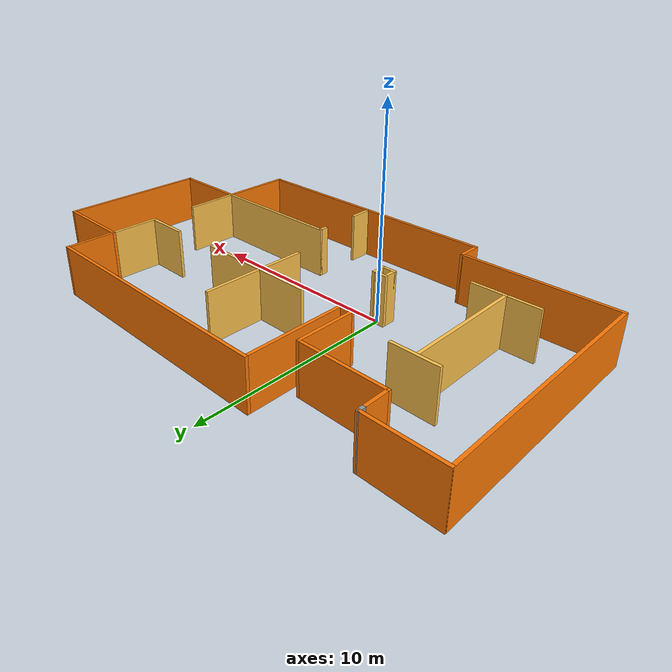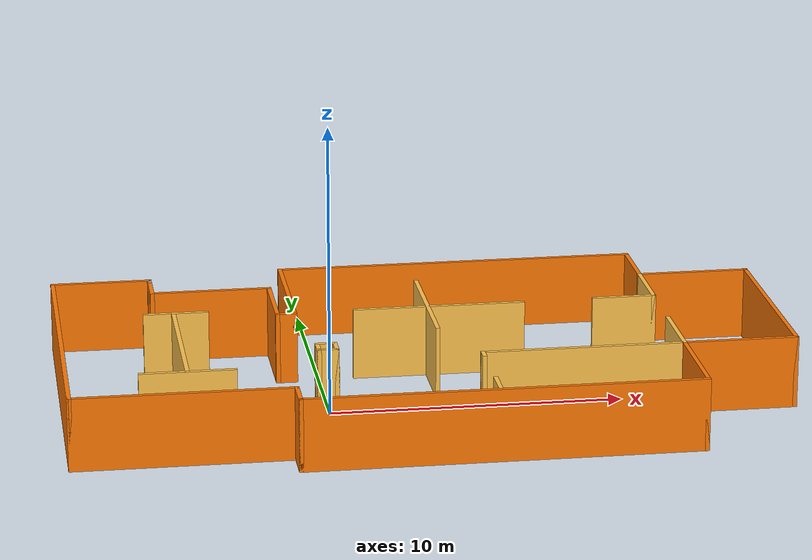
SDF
<?xml version='1.0'?>
<sdf version='1.7'>
  <model name='arm_house'>
    <pose>3.38484 1.53478 0 0 -0 0</pose>
    <link name='Wall_101'>
      <collision name='Wall_101_Collision'>
        <geometry>
          <box>
            <size>2.75 0.15 2.5</size>
          </box>
        </geometry>
        <pose>0 0 1.25 0 -0 0</pose>
      </collision>
      <visual name='Wall_101_Visual'>
        <pose>0 0 1.25 0 -0 0</pose>
        <geometry>
          <box>
            <size>2.75 0.15 2.5</size>
          </box>
        </geometry>
        <material>
          <script>
            <uri>file://media/materials/scripts/gazebo.material</uri>
            <name>Gazebo/Grey</name>
          </script>
          <ambient>1 0.764706 0.305882 1</ambient>
        </material>
        <meta>
          <layer>0</layer>
        </meta>
      </visual>
      <pose>8.425 -1.75 0 0 -0 1.5708</pose>
    </link>
    <link name='Wall_103'>
      <collision name='Wall_103_Collision'>
        <geometry>
          <box>
            <size>7 0.15 2.5</size>
          </box>
        </geometry>
        <pose>0 0 1.25 0 -0 0</pose>
      </collision>
      <visual name='Wall_103_Visual'>
        <pose>0 0 1.25 0 -0 0</pose>
        <geometry>
          <box>
            <size>7 0.15 2.5</size>
          </box>
        </geometry>
        <material>
          <script>
            <uri>file://media/materials/scripts/gazebo.material</uri>
            <name>Gazebo/Grey</name>
          </script>
          <ambient>1 0.764706 0.305882 1</ambient>
        </material>
        <meta>
          <layer>0</layer>
        </meta>
      </visual>
      <pose>5 -3.05 0 0 -0 3.14159</pose>
    </link>
    <link name='Wall_104'>
      <collision name='Wall_104_Collision'>
        <geometry>
          <box>
            <size>0.5 0.15 2.5</size>
          </box>
        </geometry>
        <pose>0 0 1.25 0 -0 0</pose>
      </collision>
      <visual name='Wall_104_Visual'>
        <pose>0 0 1.25 0 -0 0</pose>
        <geometry>
          <box>
            <size>0.5 0.15 2.5</size>
          </box>
        </geometry>
        <material>
          <script>
            <uri>file://media/materials/scripts/gazebo.material</uri>
            <name>Gazebo/Grey</name>
          </script>
          <ambient>1 0.764706 0.305882 1</ambient>
        </material>
        <meta>
          <layer>0</layer>
        </meta>
      </visual>
      <pose>1.575 -3.225 0 0 -0 -1.5708</pose>
    </link>
    <link name='Wall_106'>
      <collision name='Wall_106_Collision'>
        <geometry>
          <box>
            <size>1.25 0.15 2.5</size>
          </box>
        </geometry>
        <pose>0 0 1.25 0 -0 0</pose>
      </collision>
      <visual name='Wall_106_Visual'>
        <pose>0 0 1.25 0 -0 0</pose>
        <geometry>
          <box>
            <size>1.25 0.15 2.5</size>
          </box>
        </geometry>
        <material>
          <script>
            <uri>file://media/materials/scripts/gazebo.material</uri>
            <name>Gazebo/Grey</name>
          </script>
          <ambient>1 0.764706 0.305882 1</ambient>
        </material>
        <meta>
          <layer>0</layer>
        </meta>
      </visual>
      <pose>1.58669 -6.09197 0 0 -0 1.5708</pose>
    </link>
    <link name='Wall_108'>
      <collision name='Wall_108_Collision'>
        <geometry>
          <box>
            <size>0.75 0.15 2.5</size>
          </box>
        </geometry>
        <pose>0 0 1.25 0 -0 0</pose>
      </collision>
      <visual name='Wall_108_Visual'>
        <pose>0 0 1.25 0 -0 0</pose>
        <geometry>
          <box>
            <size>0.75 0.15 2.5</size>
          </box>
        </geometry>
        <material>
          <script>
            <uri>file://media/materials/scripts/gazebo.material</uri>
            <name>Gazebo/Grey</name>
          </script>
          <ambient>1 0.764706 0.305882 1</ambient>
        </material>
        <meta>
          <layer>0</layer>
        </meta>
      </visual>
      <pose>-3.79225 -1.74467 0 0 -0 -1.5708</pose>
    </link>
    <link name='Wall_109'>
      <collision name='Wall_109_Collision'>
        <geometry>
          <box>
            <size>0.75 0.15 2.5</size>
          </box>
        </geometry>
        <pose>0 0 1.25 0 -0 0</pose>
      </collision>
      <visual name='Wall_109_Visual'>
        <pose>0 0 1.25 0 -0 0</pose>
        <geometry>
          <box>
            <size>0.75 0.15 2.5</size>
          </box>
        </geometry>
        <material>
          <script>
            <uri>file://media/materials/scripts/gazebo.material</uri>
            <name>Gazebo/Grey</name>
          </script>
          <ambient>1 0.764706 0.305882 1</ambient>
        </material>
        <meta>
          <layer>0</layer>
        </meta>
      </visual>
      <pose>-3.49225 -2.04467 0 0 -0 0</pose>
    </link>
    <link name='Wall_110'>
      <collision name='Wall_110_Collision'>
        <geometry>
          <box>
            <size>0.75 0.15 2.5</size>
          </box>
        </geometry>
        <pose>0 0 1.25 0 -0 0</pose>
      </collision>
      <visual name='Wall_110_Visual'>
        <pose>0 0 1.25 0 -0 0</pose>
        <geometry>
          <box>
            <size>0.75 0.15 2.5</size>
          </box>
        </geometry>
        <material>
          <script>
            <uri>file://media/materials/scripts/gazebo.material</uri>
            <name>Gazebo/Grey</name>
          </script>
          <ambient>1 0.764706 0.305882 1</ambient>
        </material>
        <meta>
          <layer>0</layer>
        </meta>
      </visual>
      <pose>-3.19225 -1.74467 0 0 -0 1.5708</pose>
    </link>
    <link name='Wall_111'>
      <collision name='Wall_111_Collision'>
        <geometry>
          <box>
            <size>0.75 0.15 2.5</size>
          </box>
        </geometry>
        <pose>0 0 1.25 0 -0 0</pose>
      </collision>
      <visual name='Wall_111_Visual'>
        <pose>0 0 1.25 0 -0 0</pose>
        <geometry>
          <box>
            <size>0.75 0.15 2.5</size>
          </box>
        </geometry>
        <material>
          <script>
            <uri>file://media/materials/scripts/gazebo.material</uri>
            <name>Gazebo/Grey</name>
          </script>
          <ambient>1 0.764706 0.305882 1</ambient>
        </material>
        <meta>
          <layer>0</layer>
        </meta>
      </visual>
      <pose>-3.49225 -1.44467 0 0 -0 3.14159</pose>
    </link>
    <link name='Wall_67'>
      <collision name='Wall_67_Collision'>
        <geometry>
          <box>
            <size>11.75 0.15 2.5</size>
          </box>
        </geometry>
        <pose>0 0 1.25 0 -0 0</pose>
      </collision>
      <visual name='Wall_67_Visual'>
        <pose>0 0 1.25 0 -0 0</pose>
        <geometry>
          <box>
            <size>11.75 0.15 2.5</size>
          </box>
        </geometry>
        <material>
          <script>
            <uri>file://media/materials/scripts/gazebo.material</uri>
            <name>Gazebo/Grey</name>
          </script>
          <ambient>0.996078 0.47451 0.0196078 1</ambient>
        </material>
        <meta>
          <layer>0</layer>
        </meta>
      </visual>
      <pose>-12.275 0.25 0 0 -0 -1.5708</pose>
    </link>
    <link name='Wall_68'>
      <collision name='Wall_68_Collision'>
        <geometry>
          <box>
            <size>7.5 0.15 2.5</size>
          </box>
        </geometry>
        <pose>0 0 1.25 0 -0 0</pose>
      </collision>
      <visual name='Wall_68_Visual'>
        <pose>0 0 1.25 0 -0 0</pose>
        <geometry>
          <box>
            <size>7.5 0.15 2.5</size>
          </box>
        </geometry>
        <material>
          <script>
            <uri>file://media/materials/scripts/gazebo.material</uri>
            <name>Gazebo/Grey</name>
          </script>
          <ambient>0.996078 0.47451 0.0196078 1</ambient>
        </material>
        <meta>
          <layer>0</layer>
        </meta>
      </visual>
      <pose>-8.6 -5.55 0 0 -0 0</pose>
    </link>
    <link name='Wall_69'>
      <collision name='Wall_69_Collision'>
        <geometry>
          <box>
            <size>1.25 0.15 2.5</size>
          </box>
        </geometry>
        <pose>0 0 1.25 0 -0 0</pose>
      </collision>
      <visual name='Wall_69_Visual'>
        <pose>0 0 1.25 0 -0 0</pose>
        <geometry>
          <box>
            <size>1.25 0.15 2.5</size>
          </box>
        </geometry>
        <material>
          <script>
            <uri>file://media/materials/scripts/gazebo.material</uri>
            <name>Gazebo/Grey</name>
          </script>
          <ambient>0.996078 0.47451 0.0196078 1</ambient>
        </material>
        <meta>
          <layer>0</layer>
        </meta>
      </visual>
      <pose>-4.925 -6.1 0 0 -0 -1.5708</pose>
    </link>
    <link name='Wall_70'>
      <collision name='Wall_70_Collision'>
        <geometry>
          <box>
            <size>13.5 0.15 2.5</size>
          </box>
        </geometry>
        <pose>0 0 1.25 0 -0 0</pose>
      </collision>
      <visual name='Wall_70_Visual'>
        <pose>0 0 1.25 0 -0 0</pose>
        <geometry>
          <box>
            <size>13.5 0.15 2.5</size>
          </box>
        </geometry>
        <material>
          <script>
            <uri>file://media/materials/scripts/gazebo.material</uri>
            <name>Gazebo/Grey</name>
          </script>
          <ambient>0.996078 0.47451 0.0196078 1</ambient>
        </material>
        <meta>
          <layer>0</layer>
        </meta>
      </visual>
      <pose>1.75 -6.65 0 0 -0 0</pose>
    </link>
    <link name='Wall_71'>
      <collision name='Wall_71_Collision'>
        <geometry>
          <box>
            <size>3.75 0.15 2.5</size>
          </box>
        </geometry>
        <pose>0 0 1.25 0 -0 0</pose>
      </collision>
      <visual name='Wall_71_Visual'>
        <pose>0 0 1.25 0 -0 0</pose>
        <geometry>
          <box>
            <size>3.75 0.15 2.5</size>
          </box>
        </geometry>
        <material>
          <script>
            <uri>file://media/materials/scripts/gazebo.material</uri>
            <name>Gazebo/Grey</name>
          </script>
          <ambient>0.996078 0.47451 0.0196078 1</ambient>
        </material>
        <meta>
          <layer>0</layer>
        </meta>
      </visual>
      <pose>8.425 -4.85 0 0 -0 1.5708</pose>
    </link>
    <link name='Wall_72'>
      <collision name='Wall_72_Collision'>
        <geometry>
          <box>
            <size>4 0.15 2.5</size>
          </box>
        </geometry>
        <pose>0 0 1.25 0 -0 0</pose>
      </collision>
      <visual name='Wall_72_Visual'>
        <pose>0 0 1.25 0 -0 0</pose>
        <geometry>
          <box>
            <size>4 0.15 2.5</size>
          </box>
        </geometry>
        <material>
          <script>
            <uri>file://media/materials/scripts/gazebo.material</uri>
            <name>Gazebo/Grey</name>
          </script>
          <ambient>0.996078 0.47451 0.0196078 1</ambient>
        </material>
        <meta>
          <layer>0</layer>
        </meta>
      </visual>
      <pose>10.35 -3.05 0 0 -0 0</pose>
    </link>
    <link name='Wall_73'>
      <collision name='Wall_73_Collision'>
        <geometry>
          <box>
            <size>7.5 0.15 2.5</size>
          </box>
        </geometry>
        <pose>0 0 1.25 0 -0 0</pose>
      </collision>
      <visual name='Wall_73_Visual'>
        <pose>0 0 1.25 0 -0 0</pose>
        <geometry>
          <box>
            <size>7.5 0.15 2.5</size>
          </box>
        </geometry>
        <material>
          <script>
            <uri>file://media/materials/scripts/gazebo.material</uri>
            <name>Gazebo/Grey</name>
          </script>
          <ambient>0.996078 0.47451 0.0196078 1</ambient>
        </material>
        <meta>
          <layer>0</layer>
        </meta>
      </visual>
      <pose>12.275 0.625 0 0 -0 1.5708</pose>
    </link>
    <link name='Wall_74'>
      <collision name='Wall_74_Collision'>
        <geometry>
          <box>
            <size>4 0.15 2.5</size>
          </box>
        </geometry>
        <pose>0 0 1.25 0 -0 0</pose>
      </collision>
      <visual name='Wall_74_Visual'>
        <pose>0 0 1.25 0 -0 0</pose>
        <geometry>
          <box>
            <size>4 0.15 2.5</size>
          </box>
        </geometry>
        <material>
          <script>
            <uri>file://media/materials/scripts/gazebo.material</uri>
            <name>Gazebo/Grey</name>
          </script>
          <ambient>0.996078 0.47451 0.0196078 1</ambient>
        </material>
        <meta>
          <layer>0</layer>
        </meta>
      </visual>
      <pose>10.35 4.3 0 0 -0 3.14159</pose>
    </link>
    <link name='Wall_75'>
      <collision name='Wall_75_Collision'>
        <geometry>
          <box>
            <size>2.5 0.15 2.5</size>
          </box>
        </geometry>
        <pose>0 0 1.25 0 -0 0</pose>
      </collision>
      <visual name='Wall_75_Visual'>
        <pose>0 0 1.25 0 -0 0</pose>
        <geometry>
          <box>
            <size>2.5 0.15 2.5</size>
          </box>
        </geometry>
        <material>
          <script>
            <uri>file://media/materials/scripts/gazebo.material</uri>
            <name>Gazebo/Grey</name>
          </script>
          <ambient>0.996078 0.47451 0.0196078 1</ambient>
        </material>
        <meta>
          <layer>0</layer>
        </meta>
      </visual>
      <pose>8.425 5.475 0 0 -0 1.5708</pose>
    </link>
    <link name='Wall_76'>
      <collision name='Wall_76_Collision'>
        <geometry>
          <box>
            <size>12.75 0.15 2.5</size>
          </box>
        </geometry>
        <pose>0 0 1.25 0 -0 0</pose>
      </collision>
      <visual name='Wall_76_Visual'>
        <pose>0 0 1.25 0 -0 0</pose>
        <geometry>
          <box>
            <size>12.75 0.15 2.5</size>
          </box>
        </geometry>
        <material>
          <script>
            <uri>file://media/materials/scripts/gazebo.material</uri>
            <name>Gazebo/Grey</name>
          </script>
          <ambient>0.996078 0.47451 0.0196078 1</ambient>
        </material>
        <meta>
          <layer>0</layer>
        </meta>
      </visual>
      <pose>2.125 6.65 0 0 -0 3.14159</pose>
    </link>
    <link name='Wall_77'>
      <collision name='Wall_77_Collision'>
        <geometry>
          <box>
            <size>5 0.15 2.5</size>
          </box>
        </geometry>
        <pose>0 0 1.25 0 -0 0</pose>
      </collision>
      <visual name='Wall_77_Visual'>
        <pose>0 0 1.25 0 -0 0</pose>
        <geometry>
          <box>
            <size>5 0.15 2.5</size>
          </box>
        </geometry>
        <material>
          <script>
            <uri>file://media/materials/scripts/gazebo.material</uri>
            <name>Gazebo/Grey</name>
          </script>
          <ambient>0.996078 0.47451 0.0196078 1</ambient>
        </material>
        <meta>
          <layer>0</layer>
        </meta>
      </visual>
      <pose>-4.175 4.225 0 0 -0 -1.5708</pose>
    </link>
    <link name='Wall_78'>
      <collision name='Wall_78_Collision'>
        <geometry>
          <box>
            <size>0.75 0.15 2.5</size>
          </box>
        </geometry>
        <pose>0 0 1.25 0 -0 0</pose>
      </collision>
      <visual name='Wall_78_Visual'>
        <pose>0 0 1.25 0 -0 0</pose>
        <geometry>
          <box>
            <size>0.75 0.15 2.5</size>
          </box>
        </geometry>
        <material>
          <script>
            <uri>file://media/materials/scripts/gazebo.material</uri>
            <name>Gazebo/Grey</name>
          </script>
          <ambient>0.996078 0.47451 0.0196078 1</ambient>
        </material>
        <meta>
          <layer>0</layer>
        </meta>
      </visual>
      <pose>-4.475 1.8 0 0 -0 3.14159</pose>
    </link>
    <link name='Wall_79'>
      <collision name='Wall_79_Collision'>
        <geometry>
          <box>
            <size>3 0.15 2.5</size>
          </box>
        </geometry>
        <pose>0 0 1.25 0 -0 0</pose>
      </collision>
      <visual name='Wall_79_Visual'>
        <pose>0 0 1.25 0 -0 0</pose>
        <geometry>
          <box>
            <size>3 0.15 2.5</size>
          </box>
        </geometry>
        <material>
          <script>
            <uri>file://media/materials/scripts/gazebo.material</uri>
            <name>Gazebo/Grey</name>
          </script>
          <ambient>0.996078 0.47451 0.0196078 1</ambient>
        </material>
        <meta>
          <layer>0</layer>
        </meta>
      </visual>
      <pose>-4.775 3.225 0 0 -0 1.5708</pose>
    </link>
    <link name='Wall_80'>
      <collision name='Wall_80_Collision'>
        <geometry>
          <box>
            <size>4.25 0.15 2.5</size>
          </box>
        </geometry>
        <pose>0 0 1.25 0 -0 0</pose>
      </collision>
      <visual name='Wall_80_Visual'>
        <pose>0 0 1.25 0 -0 0</pose>
        <geometry>
          <box>
            <size>4.25 0.15 2.5</size>
          </box>
        </geometry>
        <material>
          <script>
            <uri>file://media/materials/scripts/gazebo.material</uri>
            <name>Gazebo/Grey</name>
          </script>
          <ambient>0.996078 0.47451 0.0196078 1</ambient>
        </material>
        <meta>
          <layer>0</layer>
        </meta>
      </visual>
      <pose>-6.825 4.65 0 0 -0 3.14159</pose>
    </link>
    <link name='Wall_81'>
      <collision name='Wall_81_Collision'>
        <geometry>
          <box>
            <size>1.25 0.15 2.5</size>
          </box>
        </geometry>
        <pose>0 0 1.25 0 -0 0</pose>
      </collision>
      <visual name='Wall_81_Visual'>
        <pose>0 0 1.25 0 -0 0</pose>
        <geometry>
          <box>
            <size>1.25 0.15 2.5</size>
          </box>
        </geometry>
        <material>
          <script>
            <uri>file://media/materials/scripts/gazebo.material</uri>
            <name>Gazebo/Grey</name>
          </script>
          <ambient>0.996078 0.47451 0.0196078 1</ambient>
        </material>
        <meta>
          <layer>0</layer>
        </meta>
      </visual>
      <pose>-8.875 5.2 0 0 -0 1.5708</pose>
    </link>
    <link name='Wall_82'>
      <collision name='Wall_82_Collision'>
        <geometry>
          <box>
            <size>0.5 0.15 2.5</size>
          </box>
        </geometry>
        <pose>0 0 1.25 0 -0 0</pose>
      </collision>
      <visual name='Wall_82_Visual'>
        <pose>0 0 1.25 0 -0 0</pose>
        <geometry>
          <box>
            <size>0.5 0.15 2.5</size>
          </box>
        </geometry>
        <material>
          <script>
            <uri>file://media/materials/scripts/gazebo.material</uri>
            <name>Gazebo/Grey</name>
          </script>
          <ambient>1 1 1 1</ambient>
        </material>
        <meta>
          <layer>0</layer>
        </meta>
      </visual>
      <pose>-8.875 5.925 0 0 -0 1.5708</pose>
    </link>
    <link name='Wall_83'>
      <collision name='Wall_83_Collision'>
        <geometry>
          <box>
            <size>3.5422 0.15 2.5</size>
          </box>
        </geometry>
        <pose>0 0 1.25 0 -0 0</pose>
      </collision>
      <visual name='Wall_83_Visual'>
        <pose>0 0 1.25 0 -0 0</pose>
        <geometry>
          <box>
            <size>3.5422 0.15 2.5</size>
          </box>
        </geometry>
        <material>
          <script>
            <uri>file://media/materials/scripts/gazebo.material</uri>
            <name>Gazebo/Grey</name>
          </script>
          <ambient>0.996078 0.47451 0.0196078 1</ambient>
        </material>
        <meta>
          <layer>0</layer>
        </meta>
      </visual>
      <pose>-10.5711 6.09939 0 0 -0 -3.14123</pose>
    </link>
    <link name='Wall_85'>
      <collision name='Wall_85_Collision'>
        <geometry>
          <box>
            <size>2.25 0.15 2.5</size>
          </box>
        </geometry>
        <pose>0 0 1.25 0 -0 0</pose>
      </collision>
      <visual name='Wall_85_Visual'>
        <pose>0 0 1.25 0 -0 0</pose>
        <geometry>
          <box>
            <size>2.25 0.15 2.5</size>
          </box>
        </geometry>
        <material>
          <script>
            <uri>file://media/materials/scripts/gazebo.material</uri>
            <name>Gazebo/Grey</name>
          </script>
          <ambient>1 0.764706 0.305882 1</ambient>
        </material>
        <meta>
          <layer>0</layer>
        </meta>
      </visual>
      <pose>-8.22484 2.39665 0 0 -0 0</pose>
    </link>
    <link name='Wall_87'>
      <collision name='Wall_87_Collision'>
        <geometry>
          <box>
            <size>6 0.15 2.5</size>
          </box>
        </geometry>
        <pose>0 0 1.25 0 -0 0</pose>
      </collision>
      <visual name='Wall_87_Visual'>
        <pose>0 0 1.25 0 -0 0</pose>
        <geometry>
          <box>
            <size>6 0.15 2.5</size>
          </box>
        </geometry>
        <material>
          <script>
            <uri>file://media/materials/scripts/gazebo.material</uri>
            <name>Gazebo/Grey</name>
          </script>
          <ambient>1 0.764706 0.305882 1</ambient>
        </material>
        <meta>
          <layer>0</layer>
        </meta>
      </visual>
      <pose>-8.30484 -0.567336 0 0 -0 -1.5708</pose>
    </link>
    <link name='Wall_90'>
      <collision name='Wall_90_Collision'>
        <geometry>
          <box>
            <size>3.25 0.15 2.5</size>
          </box>
        </geometry>
        <pose>0 0 1.25 0 -0 0</pose>
      </collision>
      <visual name='Wall_90_Visual'>
        <pose>0 0 1.25 0 -0 0</pose>
        <geometry>
          <box>
            <size>3.25 0.15 2.5</size>
          </box>
        </geometry>
        <material>
          <script>
            <uri>file://media/materials/scripts/gazebo.material</uri>
            <name>Gazebo/Grey</name>
          </script>
          <ambient>1 0.764706 0.305882 1</ambient>
        </material>
        <meta>
          <layer>0</layer>
        </meta>
      </visual>
      <pose>-8.2937 -3.54127 0 0 -0 0</pose>
    </link>
    <link name='Wall_92'>
      <collision name='Wall_92_Collision'>
        <geometry>
          <box>
            <size>6 0.15 2.5</size>
          </box>
        </geometry>
        <pose>0 0 1.25 0 -0 0</pose>
      </collision>
      <visual name='Wall_92_Visual'>
        <pose>0 0 1.25 0 -0 0</pose>
        <geometry>
          <box>
            <size>6 0.15 2.5</size>
          </box>
        </geometry>
        <material>
          <script>
            <uri>file://media/materials/scripts/gazebo.material</uri>
            <name>Gazebo/Grey</name>
          </script>
          <ambient>1 0.764706 0.305882 1</ambient>
        </material>
        <meta>
          <layer>0</layer>
        </meta>
      </visual>
      <pose>0.843608 1.89041 0 0 -0 0</pose>
    </link>
    <link name='Wall_94'>
      <collision name='Wall_94_Collision'>
        <geometry>
          <box>
            <size>5.25 0.15 2.5</size>
          </box>
        </geometry>
        <pose>0 0 1.25 0 -0 0</pose>
      </collision>
      <visual name='Wall_94_Visual'>
        <pose>0 0 1.25 0 -0 0</pose>
        <geometry>
          <box>
            <size>5.25 0.15 2.5</size>
          </box>
        </geometry>
        <material>
          <script>
            <uri>file://media/materials/scripts/gazebo.material</uri>
            <name>Gazebo/Grey</name>
          </script>
          <ambient>1 0.764706 0.305882 1</ambient>
        </material>
        <meta>
          <layer>0</layer>
        </meta>
      </visual>
      <pose>0.454094 2.15132 0 0 -0 -1.5708</pose>
    </link>
    <link name='Wall_98'>
      <collision name='Wall_98_Collision'>
        <geometry>
          <box>
            <size>2.5 0.15 2.5</size>
          </box>
        </geometry>
        <pose>0 0 1.25 0 -0 0</pose>
      </collision>
      <visual name='Wall_98_Visual'>
        <pose>0 0 1.25 0 -0 0</pose>
        <geometry>
          <box>
            <size>2.5 0.15 2.5</size>
          </box>
        </geometry>
        <material>
          <script>
            <uri>file://media/materials/scripts/gazebo.material</uri>
            <name>Gazebo/Grey</name>
          </script>
          <ambient>1 0.764706 0.305882 1</ambient>
        </material>
        <meta>
          <layer>0</layer>
        </meta>
      </visual>
      <pose>8.425 3.125 0 0 -0 -1.5708</pose>
    </link>
    <link name='Wall_99'>
      <collision name='Wall_99_Collision'>
        <geometry>
          <box>
            <size>2.25 0.15 2.5</size>
          </box>
        </geometry>
        <pose>0 0 1.25 0 -0 0</pose>
      </collision>
      <visual name='Wall_99_Visual'>
        <pose>0 0 1.25 0 -0 0</pose>
        <geometry>
          <box>
            <size>2.25 0.15 2.5</size>
          </box>
        </geometry>
        <material>
          <script>
            <uri>file://media/materials/scripts/gazebo.material</uri>
            <name>Gazebo/Grey</name>
          </script>
          <ambient>1 0.764706 0.305882 1</ambient>
        </material>
        <meta>
          <layer>0</layer>
        </meta>
      </visual>
      <pose>7.375 1.95 0 0 -0 3.14159</pose>
    </link>
    <static>1</static>
  </model>
</sdf>
